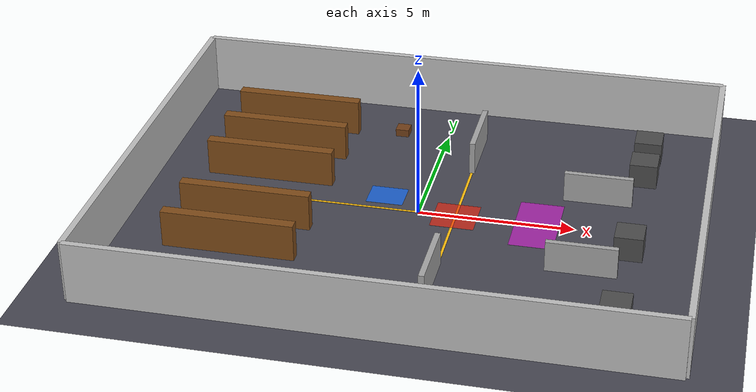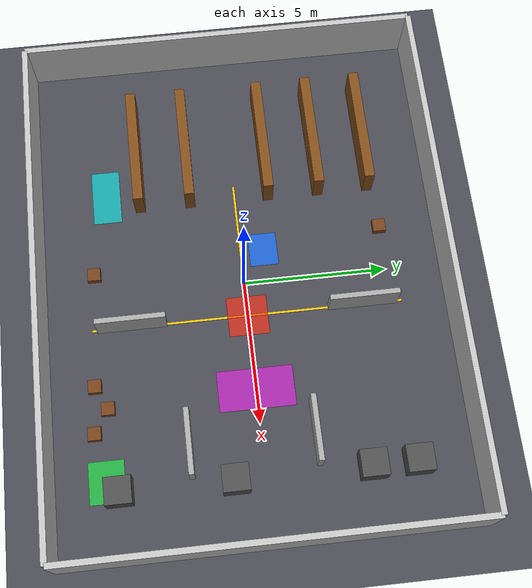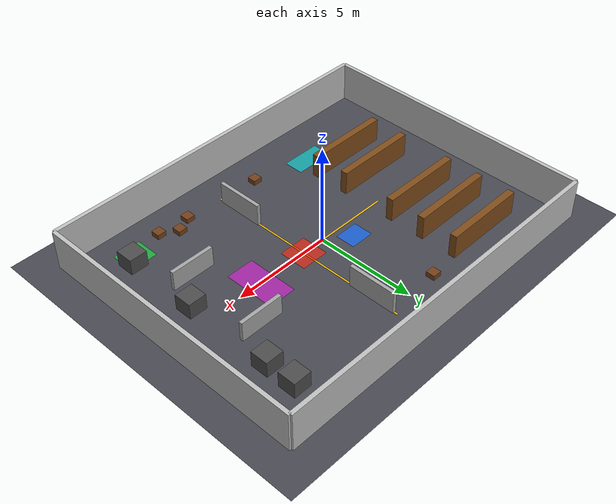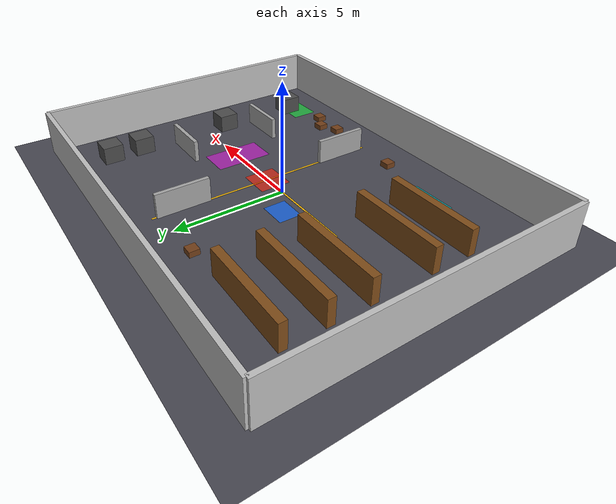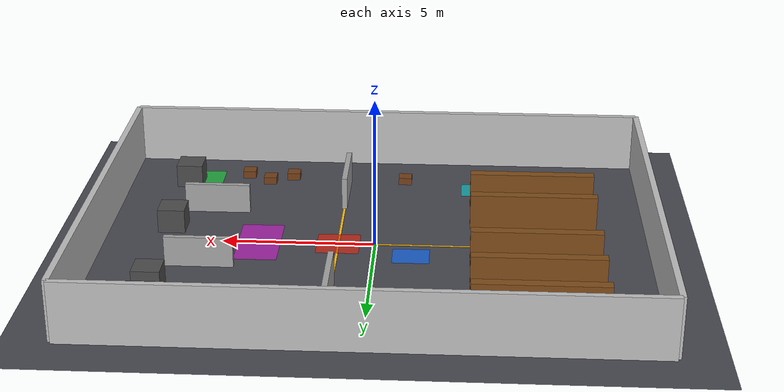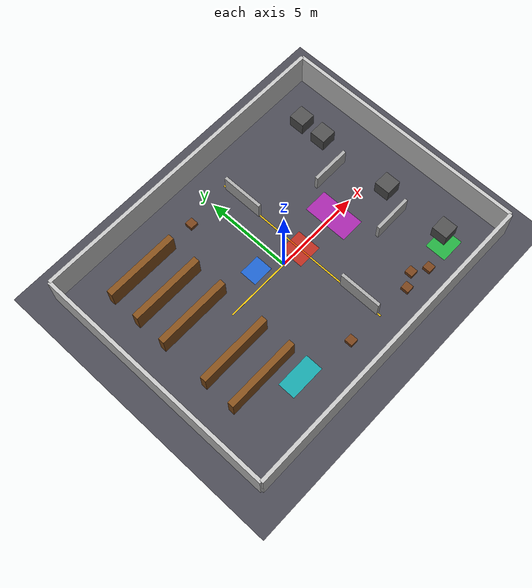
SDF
<?xml version="1.0" ?>
<sdf version="1.9">
<world name="warehouse_world">

<scene>
  <ambient>0.85 0.85 0.85 1</ambient>
  <background>0.9 0.9 0.9 1</background>
  <shadows>false</shadows>
</scene>

<physics name="physics" type="ode">
  <max_step_size>0.001</max_step_size>
  <real_time_factor>1.0</real_time_factor>
  <real_time_update_rate>1000</real_time_update_rate>
</physics>

<plugin filename="gz-sim-physics-system" name="gz::sim::systems::Physics"/>
<plugin filename="gz-sim-user-commands-system" name="gz::sim::systems::UserCommands"/>
<plugin filename="gz-sim-scene-broadcaster-system" name="gz::sim::systems::SceneBroadcaster"/>
<plugin filename="gz-sim-sensors-system" name="gz::sim::systems::Sensors">
  <render_engine>ogre2</render_engine>
</plugin>

<light type="directional" name="sun">
  <cast_shadows>false</cast_shadows>
  <pose>0 0 20 0 0 0</pose>
  <diffuse>1 1 1 1</diffuse>
  <specular>0.5 0.5 0.5 1</specular>
  <direction>-0.3 0.3 -1</direction>
</light>

<model name="ground">
  <static>true</static>
  <link name="ground_link">
    <collision name="collision">
      <geometry><plane><normal>0 0 1</normal><size>18 14</size></plane></geometry>
      <surface><friction><ode><mu>0.9</mu><mu2>0.9</mu2></ode></friction></surface>
    </collision>
    <visual name="visual">
      <geometry><plane><normal>0 0 1</normal><size>18 14</size></plane></geometry>
      <material><ambient>0.28 0.28 0.32 1</ambient><diffuse>0.28 0.28 0.32 1</diffuse></material>
    </visual>
  </link>
</model>

<model name="floor_markings">
  <static>true</static>
  <link name="main_lane_center_line">
    <pose>1.2 0 0.006 0 0 0</pose>
    <visual name="visual"><geometry><box><size>0.08 10.8 0.01</size></box></geometry><material><ambient>1.0 0.75 0.05 1</ambient><diffuse>1.0 0.75 0.05 1</diffuse></material></visual>
  </link>
  <link name="crossing_lane">
    <pose>0 0.0 0.007 0 0 0</pose>
    <visual name="visual"><geometry><box><size>7.5 0.08 0.01</size></box></geometry><material><ambient>1.0 0.75 0.05 1</ambient><diffuse>1.0 0.75 0.05 1</diffuse></material></visual>
  </link>
  <link name="robot_start_zone">
    <pose>-1.2 0.8 0.008 0 0 0</pose>
    <visual name="visual"><geometry><box><size>1.2 1.0 0.01</size></box></geometry><material><ambient>0.1 0.45 1.0 0.75</ambient><diffuse>0.1 0.45 1.0 0.75</diffuse></material></visual>
  </link>
  <link name="crossing_zone">
    <pose>1.2 0.0 0.009 0 0 0</pose>
    <visual name="visual"><geometry><box><size>1.4 1.4 0.01</size></box></geometry><material><ambient>1.0 0.15 0.05 0.65</ambient><diffuse>1.0 0.15 0.05 0.65</diffuse></material></visual>
  </link>
  <link name="head_on_zone">
    <pose>3.8 0.0 0.009 0 0 0</pose>
    <visual name="visual"><geometry><box><size>1.4 2.6 0.01</size></box></geometry><material><ambient>0.9 0.1 0.9 0.6</ambient><diffuse>0.9 0.1 0.9 0.6</diffuse></material></visual>
  </link>
  <link name="parking_zone">
    <pose>6.4 -5.2 0.009 0 0 0</pose>
    <visual name="visual"><geometry><box><size>1.4 1.2 0.01</size></box></geometry><material><ambient>0.1 0.9 0.25 0.65</ambient><diffuse>0.1 0.9 0.25 0.65</diffuse></material></visual>
  </link>
  <link name="prediction_test_zone">
    <pose>-3.8 -4.6 0.009 0 0 0</pose>
    <visual name="visual"><geometry><box><size>2.0 1.0 0.01</size></box></geometry><material><ambient>0.0 0.9 0.9 0.6</ambient><diffuse>0.0 0.9 0.9 0.6</diffuse></material></visual>
  </link>
</model>

<model name="warehouse_walls">
  <static>true</static>
  <link name="north_wall"><pose>0 7 1 0 0 0</pose><collision name="collision"><geometry><box><size>18 0.2 2</size></box></geometry></collision><visual name="visual"><geometry><box><size>18 0.2 2</size></box></geometry><material><ambient>0.75 0.75 0.75 1</ambient><diffuse>0.75 0.75 0.75 1</diffuse></material></visual></link>
  <link name="south_wall"><pose>0 -7 1 0 0 0</pose><collision name="collision"><geometry><box><size>18 0.2 2</size></box></geometry></collision><visual name="visual"><geometry><box><size>18 0.2 2</size></box></geometry><material><ambient>0.75 0.75 0.75 1</ambient><diffuse>0.75 0.75 0.75 1</diffuse></material></visual></link>
  <link name="east_wall"><pose>9 0 1 0 0 0</pose><collision name="collision"><geometry><box><size>0.2 14 2</size></box></geometry></collision><visual name="visual"><geometry><box><size>0.2 14 2</size></box></geometry><material><ambient>0.75 0.75 0.75 1</ambient><diffuse>0.75 0.75 0.75 1</diffuse></material></visual></link>
  <link name="west_wall"><pose>-9 0 1 0 0 0</pose><collision name="collision"><geometry><box><size>0.2 14 2</size></box></geometry></collision><visual name="visual"><geometry><box><size>0.2 14 2</size></box></geometry><material><ambient>0.75 0.75 0.75 1</ambient><diffuse>0.75 0.75 0.75 1</diffuse></material></visual></link>
</model>

<model name="storage_racks">
  <static>true</static>
  <link name="rack_1"><pose>-5.2 4.8 0.6 0 0 0</pose><collision name="collision"><geometry><box><size>4.2 0.35 1.2</size></box></geometry></collision><visual name="visual"><geometry><box><size>4.2 0.35 1.2</size></box></geometry><material><ambient>0.5 0.3 0.1 1</ambient><diffuse>0.5 0.3 0.1 1</diffuse></material></visual></link>
  <link name="rack_2"><pose>-5.2 3.0 0.6 0 0 0</pose><collision name="collision"><geometry><box><size>4.2 0.35 1.2</size></box></geometry></collision><visual name="visual"><geometry><box><size>4.2 0.35 1.2</size></box></geometry><material><ambient>0.5 0.3 0.1 1</ambient><diffuse>0.5 0.3 0.1 1</diffuse></material></visual></link>
  <link name="rack_3"><pose>-5.2 1.2 0.6 0 0 0</pose><collision name="collision"><geometry><box><size>4.2 0.35 1.2</size></box></geometry></collision><visual name="visual"><geometry><box><size>4.2 0.35 1.2</size></box></geometry><material><ambient>0.5 0.3 0.1 1</ambient><diffuse>0.5 0.3 0.1 1</diffuse></material></visual></link>
  <link name="rack_4"><pose>-5.2 -1.6 0.6 0 0 0</pose><collision name="collision"><geometry><box><size>4.2 0.35 1.2</size></box></geometry></collision><visual name="visual"><geometry><box><size>4.2 0.35 1.2</size></box></geometry><material><ambient>0.5 0.3 0.1 1</ambient><diffuse>0.5 0.3 0.1 1</diffuse></material></visual></link>
  <link name="rack_5"><pose>-5.2 -3.4 0.6 0 0 0</pose><collision name="collision"><geometry><box><size>4.2 0.35 1.2</size></box></geometry></collision><visual name="visual"><geometry><box><size>4.2 0.35 1.2</size></box></geometry><material><ambient>0.5 0.3 0.1 1</ambient><diffuse>0.5 0.3 0.1 1</diffuse></material></visual></link>
</model>

<model name="internal_walls">
  <static>true</static>
  <link name="partition_1"><pose>1.2 4.0 0.55 0 0 0</pose><collision name="collision"><geometry><box><size>0.18 2.4 1.1</size></box></geometry></collision><visual name="visual"><geometry><box><size>0.18 2.4 1.1</size></box></geometry><material><ambient>0.65 0.65 0.65 1</ambient><diffuse>0.65 0.65 0.65 1</diffuse></material></visual></link>
  <link name="partition_2"><pose>1.2 -4.0 0.55 0 0 0</pose><collision name="collision"><geometry><box><size>0.18 2.4 1.1</size></box></geometry></collision><visual name="visual"><geometry><box><size>0.18 2.4 1.1</size></box></geometry><material><ambient>0.65 0.65 0.65 1</ambient><diffuse>0.65 0.65 0.65 1</diffuse></material></visual></link>
  <link name="short_wall_1"><pose>5.5 1.8 0.5 0 0 0</pose><collision name="collision"><geometry><box><size>2.2 0.18 1.0</size></box></geometry></collision><visual name="visual"><geometry><box><size>2.2 0.18 1.0</size></box></geometry><material><ambient>0.65 0.65 0.65 1</ambient><diffuse>0.65 0.65 0.65 1</diffuse></material></visual></link>
  <link name="short_wall_2"><pose>5.5 -2.4 0.5 0 0 0</pose><collision name="collision"><geometry><box><size>2.2 0.18 1.0</size></box></geometry></collision><visual name="visual"><geometry><box><size>2.2 0.18 1.0</size></box></geometry><material><ambient>0.65 0.65 0.65 1</ambient><diffuse>0.65 0.65 0.65 1</diffuse></material></visual></link>
</model>

<model name="machines">
  <static>true</static>
  <link name="machine_1"><pose>6.8 5.0 0.4 0 0 0</pose><collision name="collision"><geometry><box><size>0.9 0.9 0.8</size></box></geometry></collision><visual name="visual"><geometry><box><size>0.9 0.9 0.8</size></box></geometry><material><ambient>0.3 0.3 0.3 1</ambient><diffuse>0.3 0.3 0.3 1</diffuse></material></visual></link>
  <link name="machine_2"><pose>6.8 3.5 0.4 0 0 0</pose><collision name="collision"><geometry><box><size>0.9 0.9 0.8</size></box></geometry></collision><visual name="visual"><geometry><box><size>0.9 0.9 0.8</size></box></geometry><material><ambient>0.3 0.3 0.3 1</ambient><diffuse>0.3 0.3 0.3 1</diffuse></material></visual></link>
  <link name="machine_3"><pose>6.8 -1.0 0.4 0 0 0</pose><collision name="collision"><geometry><box><size>0.9 0.9 0.8</size></box></geometry></collision><visual name="visual"><geometry><box><size>0.9 0.9 0.8</size></box></geometry><material><ambient>0.3 0.3 0.3 1</ambient><diffuse>0.3 0.3 0.3 1</diffuse></material></visual></link>
  <link name="machine_4"><pose>6.8 -4.8 0.4 0 0 0</pose><collision name="collision"><geometry><box><size>0.9 0.9 0.8</size></box></geometry></collision><visual name="visual"><geometry><box><size>0.9 0.9 0.8</size></box></geometry><material><ambient>0.3 0.3 0.3 1</ambient><diffuse>0.3 0.3 0.3 1</diffuse></material></visual></link>
</model>

<model name="pallets">
  <static>true</static>
  <link name="pallet_1"><pose>3.2 -5.4 0.125 0 0 0</pose><collision name="collision"><geometry><box><size>0.45 0.45 0.25</size></box></geometry></collision><visual name="visual"><geometry><box><size>0.45 0.45 0.25</size></box></geometry><material><ambient>0.45 0.25 0.1 1</ambient><diffuse>0.45 0.25 0.1 1</diffuse></material></visual></link>
  <link name="pallet_2"><pose>4.0 -5.0 0.125 0 0 0</pose><collision name="collision"><geometry><box><size>0.45 0.45 0.25</size></box></geometry></collision><visual name="visual"><geometry><box><size>0.45 0.45 0.25</size></box></geometry><material><ambient>0.45 0.25 0.1 1</ambient><diffuse>0.45 0.25 0.1 1</diffuse></material></visual></link>
  <link name="pallet_3"><pose>4.8 -5.5 0.125 0 0 0</pose><collision name="collision"><geometry><box><size>0.45 0.45 0.25</size></box></geometry></collision><visual name="visual"><geometry><box><size>0.45 0.45 0.25</size></box></geometry><material><ambient>0.45 0.25 0.1 1</ambient><diffuse>0.45 0.25 0.1 1</diffuse></material></visual></link>
  <link name="pallet_4"><pose>-0.8 -5.2 0.125 0 0 0</pose><collision name="collision"><geometry><box><size>0.45 0.45 0.25</size></box></geometry></collision><visual name="visual"><geometry><box><size>0.45 0.45 0.25</size></box></geometry><material><ambient>0.45 0.25 0.1 1</ambient><diffuse>0.45 0.25 0.1 1</diffuse></material></visual></link>
  <link name="pallet_5"><pose>-1.6 5.0 0.125 0 0 0</pose><collision name="collision"><geometry><box><size>0.45 0.45 0.25</size></box></geometry></collision><visual name="visual"><geometry><box><size>0.45 0.45 0.25</size></box></geometry><material><ambient>0.45 0.25 0.1 1</ambient><diffuse>0.45 0.25 0.1 1</diffuse></material></visual></link>
</model>

</world>
</sdf>
